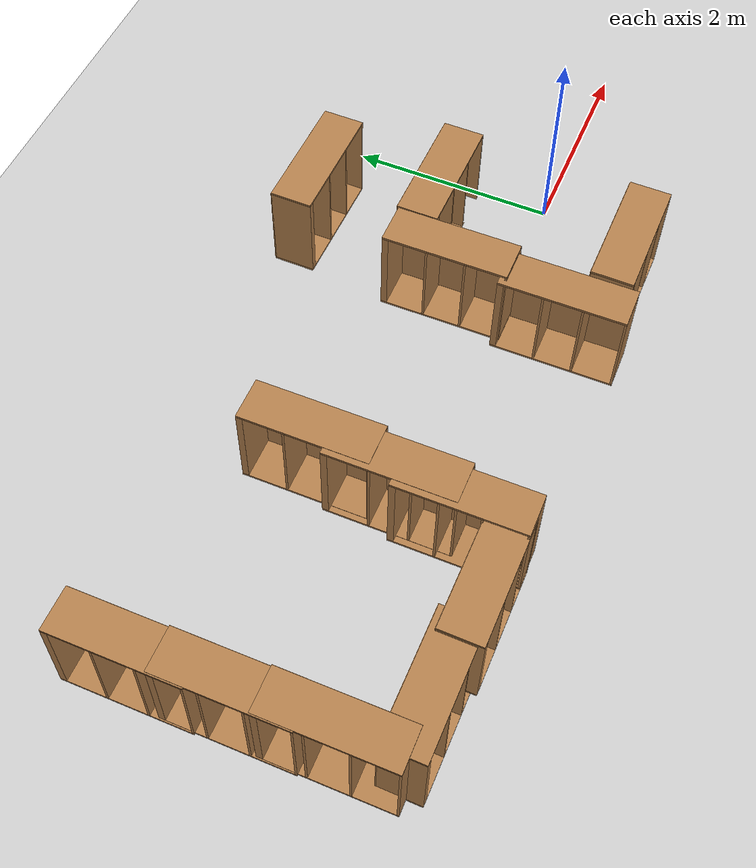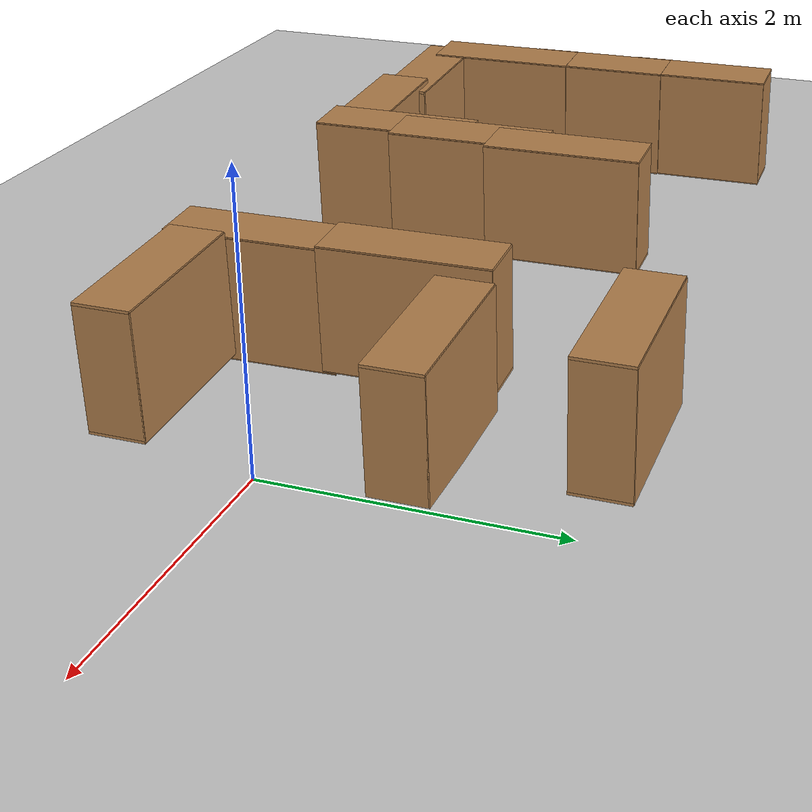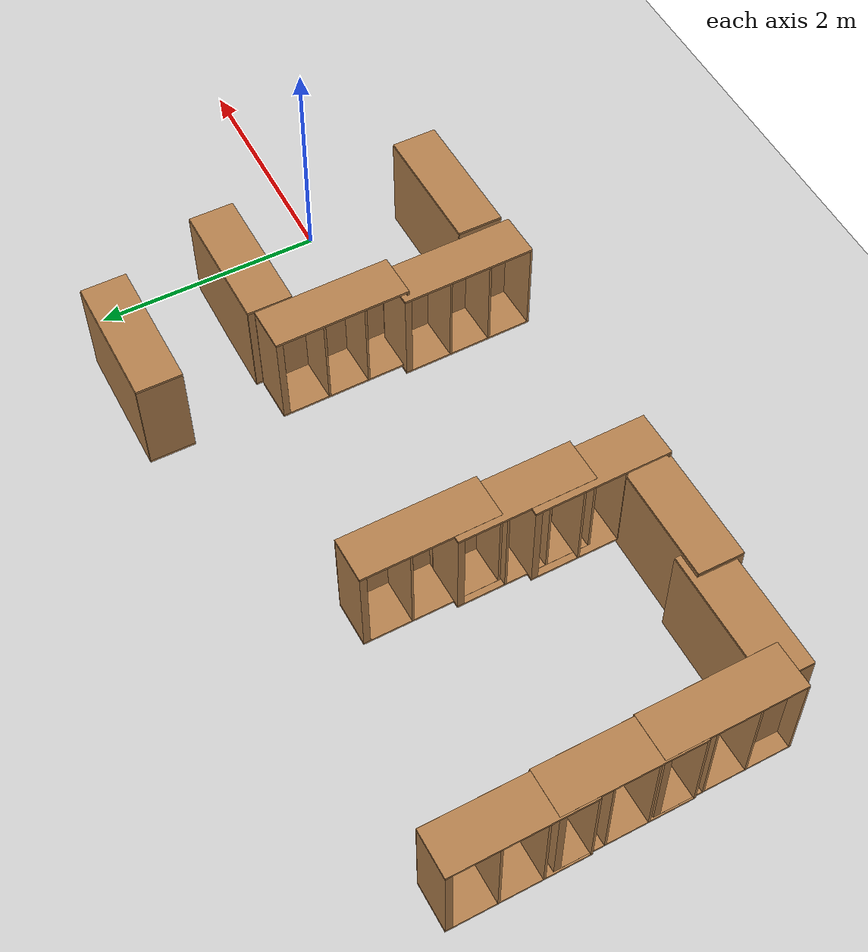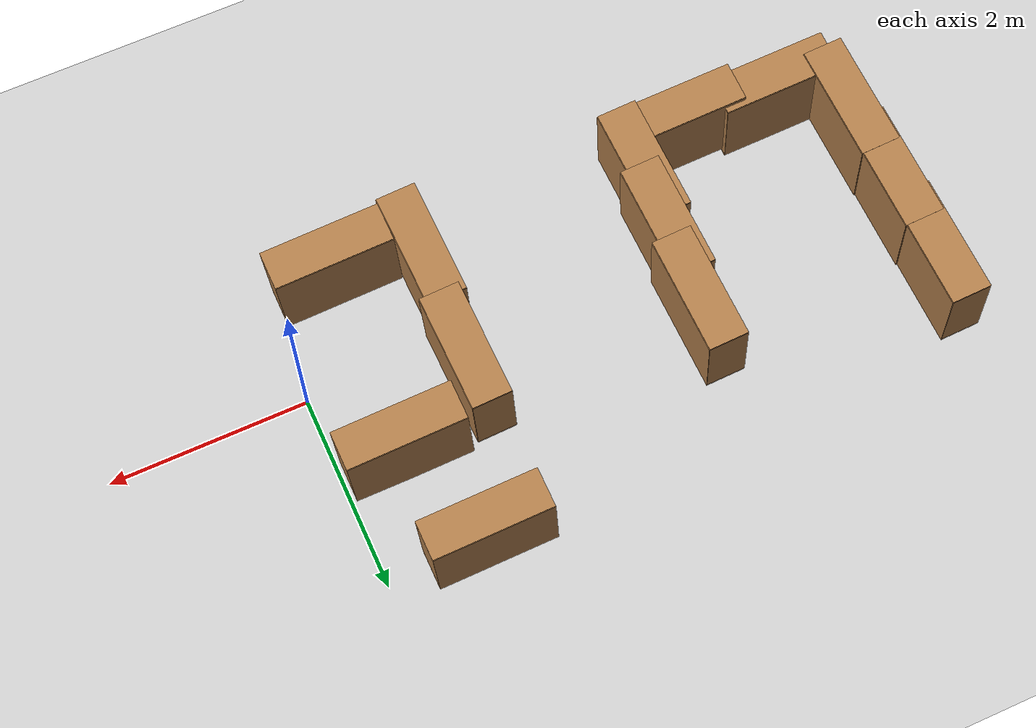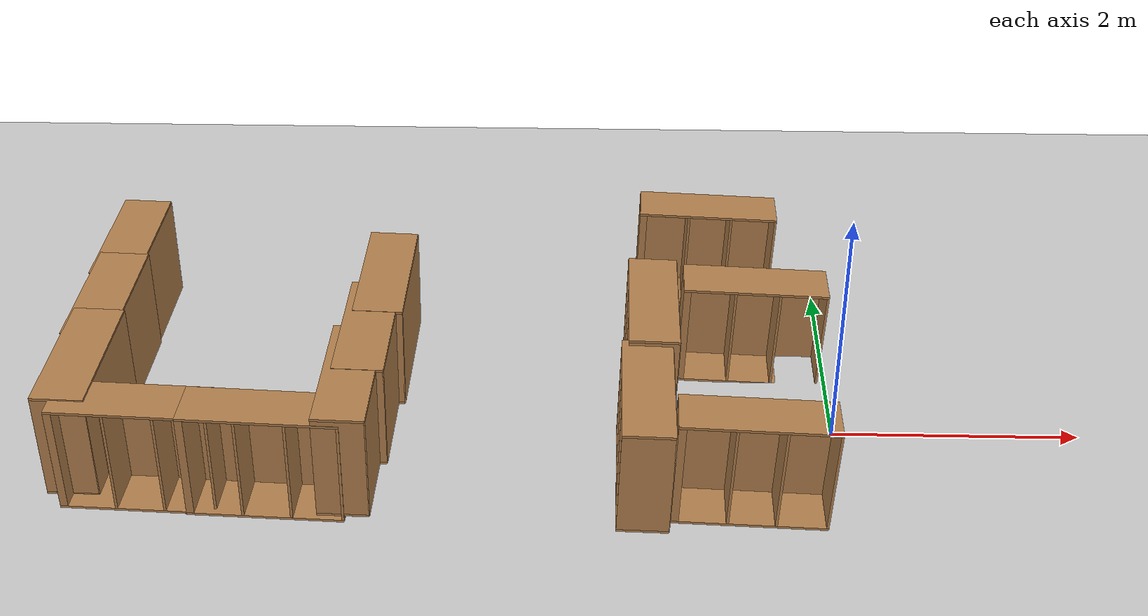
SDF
<sdf version="1.7">
 <world name="default">
  <model name="ground_plane">
   <static>1</static>
   <link name="link">
    <collision name="collision">
     <geometry><plane><normal>0 0 1</normal><size>100 100</size></plane></geometry>
     <surface>
      <contact><collide_bitmask>65535</collide_bitmask></contact>
      <friction><ode><mu>100</mu><mu2>50</mu2></ode></friction>
     </surface>
    </collision>
    <visual name="visual">
     <cast_shadows>0</cast_shadows>
     <geometry><plane><normal>0 0 1</normal><size>100 100</size></plane></geometry>
     <material>
      <script><uri>file://media/materials/scripts/gazebo.material</uri><name>Gazebo/Grey</name></script>
     </material>
    </visual>
   </link>
  </model>
  <model name="bookshelf_clone">
   <static>1</static>
   <link name="link">
    <inertial><mass>1</mass></inertial>
    <collision name="back">
     <pose>0 0.005 0.6 0 -0 0</pose>
     <geometry><box><size>0.9 0.01 1.2</size></box></geometry>
    </collision>
    <visual name="visual1">
     <pose>0 0.005 0.6 0 -0 0</pose>
     <geometry><box><size>0.9 0.01 1.2</size></box></geometry>
     <material>
      <script><uri>file://media/materials/scripts/gazebo.material</uri><name>Gazebo/Wood</name></script>
     </material>
    </visual>
    <collision name="left_side">
     <pose>0.45 -0.195 0.6 0 -0 0</pose>
     <geometry><box><size>0.02 0.4 1.2</size></box></geometry>
    </collision>
    <visual name="visual2">
     <pose>0.45 -0.195 0.6 0 -0 0</pose>
     <geometry><box><size>0.02 0.4 1.2</size></box></geometry>
     <material>
      <script><uri>file://media/materials/scripts/gazebo.material</uri><name>Gazebo/Wood</name></script>
     </material>
    </visual>
    <collision name="right_side">
     <pose>-0.45 -0.195 0.6 0 -0 0</pose>
     <geometry><box><size>0.02 0.4 1.2</size></box></geometry>
    </collision>
    <visual name="visual3">
     <pose>-0.45 -0.195 0.6 0 -0 0</pose>
     <geometry><box><size>0.02 0.4 1.2</size></box></geometry>
     <material>
      <script><uri>file://media/materials/scripts/gazebo.material</uri><name>Gazebo/Wood</name></script>
     </material>
    </visual>
    <collision name="bottom">
     <pose>0 -0.195 0.03 0 -0 0</pose>
     <geometry><box><size>0.88 0.4 0.06</size></box></geometry>
    </collision>
    <visual name="visual4">
     <pose>0 -0.195 0.03 0 -0 0</pose>
     <geometry><box><size>0.88 0.4 0.06</size></box></geometry>
     <material>
      <script><uri>file://media/materials/scripts/gazebo.material</uri><name>Gazebo/Wood</name></script>
     </material>
    </visual>
    <collision name="top">
     <pose>0 -0.195 1.19 0 -0 0</pose>
     <geometry><box><size>0.88 0.4 0.02</size></box></geometry>
    </collision>
    <visual name="visual5">
     <pose>0 -0.195 1.19 0 -0 0</pose>
     <geometry><box><size>0.88 0.4 0.02</size></box></geometry>
     <material>
      <script><uri>file://media/materials/scripts/gazebo.material</uri><name>Gazebo/Wood</name></script>
     </material>
    </visual>
    <collision name="low_shelf">
     <pose>0 -0.195 0.43 0 -0 0</pose>
     <geometry><box><size>0.88 0.4 0.02</size></box></geometry>
    </collision>
    <visual name="visual6">
     <pose>0 -0.195 0.43 0 -0 0</pose>
     <geometry><box><size>0.88 0.4 0.02</size></box></geometry>
     <material>
      <script><uri>file://media/materials/scripts/gazebo.material</uri><name>Gazebo/Wood</name></script>
     </material>
    </visual>
    <collision name="high_shelf">
     <pose>0 -0.195 0.8 0 -0 0</pose>
     <geometry><box><size>0.88 0.4 0.02</size></box></geometry>
    </collision>
    <visual name="visual7">
     <pose>0 -0.195 0.8 0 -0 0</pose>
     <geometry><box><size>0.88 0.4 0.02</size></box></geometry>
     <material>
      <script><uri>file://media/materials/scripts/gazebo.material</uri><name>Gazebo/Wood</name></script>
     </material>
    </visual>
   </link>
   <pose>-1.23623 1.09859 0.469198 3.1373 1.52729 3.13696</pose>
  </model>
  <model name="bookshelf_clone_clone">
   <static>1</static>
   <link name="link">
    <inertial><mass>1</mass></inertial>
    <collision name="back">
     <pose>0 0.005 0.6 0 -0 0</pose>
     <geometry><box><size>0.9 0.01 1.2</size></box></geometry>
    </collision>
    <visual name="visual1">
     <pose>0 0.005 0.6 0 -0 0</pose>
     <geometry><box><size>0.9 0.01 1.2</size></box></geometry>
     <material>
      <script><uri>file://media/materials/scripts/gazebo.material</uri><name>Gazebo/Wood</name></script>
     </material>
    </visual>
    <collision name="left_side">
     <pose>0.45 -0.195 0.6 0 -0 0</pose>
     <geometry><box><size>0.02 0.4 1.2</size></box></geometry>
    </collision>
    <visual name="visual2">
     <pose>0.45 -0.195 0.6 0 -0 0</pose>
     <geometry><box><size>0.02 0.4 1.2</size></box></geometry>
     <material>
      <script><uri>file://media/materials/scripts/gazebo.material</uri><name>Gazebo/Wood</name></script>
     </material>
    </visual>
    <collision name="right_side">
     <pose>-0.45 -0.195 0.6 0 -0 0</pose>
     <geometry><box><size>0.02 0.4 1.2</size></box></geometry>
    </collision>
    <visual name="visual3">
     <pose>-0.45 -0.195 0.6 0 -0 0</pose>
     <geometry><box><size>0.02 0.4 1.2</size></box></geometry>
     <material>
      <script><uri>file://media/materials/scripts/gazebo.material</uri><name>Gazebo/Wood</name></script>
     </material>
    </visual>
    <collision name="bottom">
     <pose>0 -0.195 0.03 0 -0 0</pose>
     <geometry><box><size>0.88 0.4 0.06</size></box></geometry>
    </collision>
    <visual name="visual4">
     <pose>0 -0.195 0.03 0 -0 0</pose>
     <geometry><box><size>0.88 0.4 0.06</size></box></geometry>
     <material>
      <script><uri>file://media/materials/scripts/gazebo.material</uri><name>Gazebo/Wood</name></script>
     </material>
    </visual>
    <collision name="top">
     <pose>0 -0.195 1.19 0 -0 0</pose>
     <geometry><box><size>0.88 0.4 0.02</size></box></geometry>
    </collision>
    <visual name="visual5">
     <pose>0 -0.195 1.19 0 -0 0</pose>
     <geometry><box><size>0.88 0.4 0.02</size></box></geometry>
     <material>
      <script><uri>file://media/materials/scripts/gazebo.material</uri><name>Gazebo/Wood</name></script>
     </material>
    </visual>
    <collision name="low_shelf">
     <pose>0 -0.195 0.43 0 -0 0</pose>
     <geometry><box><size>0.88 0.4 0.02</size></box></geometry>
    </collision>
    <visual name="visual6">
     <pose>0 -0.195 0.43 0 -0 0</pose>
     <geometry><box><size>0.88 0.4 0.02</size></box></geometry>
     <material>
      <script><uri>file://media/materials/scripts/gazebo.material</uri><name>Gazebo/Wood</name></script>
     </material>
    </visual>
    <collision name="high_shelf">
     <pose>0 -0.195 0.8 0 -0 0</pose>
     <geometry><box><size>0.88 0.4 0.02</size></box></geometry>
    </collision>
    <visual name="visual7">
     <pose>0 -0.195 0.8 0 -0 0</pose>
     <geometry><box><size>0.88 0.4 0.02</size></box></geometry>
     <material>
      <script><uri>file://media/materials/scripts/gazebo.material</uri><name>Gazebo/Wood</name></script>
     </material>
    </visual>
   </link>
   <pose>-1.31083 -0.80368 0.531222 3.1373 1.52729 3.13696</pose>
  </model>
  <model name="bookshelf_clone_clone_clone_5">
   <static>1</static>
   <link name="link">
    <inertial><mass>1</mass></inertial>
    <collision name="back">
     <pose>0 0.005 0.6 0 -0 0</pose>
     <geometry><box><size>0.9 0.01 1.2</size></box></geometry>
    </collision>
    <visual name="visual1">
     <pose>0 0.005 0.6 0 -0 0</pose>
     <geometry><box><size>0.9 0.01 1.2</size></box></geometry>
     <material>
      <script><uri>file://media/materials/scripts/gazebo.material</uri><name>Gazebo/Wood</name></script>
     </material>
    </visual>
    <collision name="left_side">
     <pose>0.45 -0.195 0.6 0 -0 0</pose>
     <geometry><box><size>0.02 0.4 1.2</size></box></geometry>
    </collision>
    <visual name="visual2">
     <pose>0.45 -0.195 0.6 0 -0 0</pose>
     <geometry><box><size>0.02 0.4 1.2</size></box></geometry>
     <material>
      <script><uri>file://media/materials/scripts/gazebo.material</uri><name>Gazebo/Wood</name></script>
     </material>
    </visual>
    <collision name="right_side">
     <pose>-0.45 -0.195 0.6 0 -0 0</pose>
     <geometry><box><size>0.02 0.4 1.2</size></box></geometry>
    </collision>
    <visual name="visual3">
     <pose>-0.45 -0.195 0.6 0 -0 0</pose>
     <geometry><box><size>0.02 0.4 1.2</size></box></geometry>
     <material>
      <script><uri>file://media/materials/scripts/gazebo.material</uri><name>Gazebo/Wood</name></script>
     </material>
    </visual>
    <collision name="bottom">
     <pose>0 -0.195 0.03 0 -0 0</pose>
     <geometry><box><size>0.88 0.4 0.06</size></box></geometry>
    </collision>
    <visual name="visual4">
     <pose>0 -0.195 0.03 0 -0 0</pose>
     <geometry><box><size>0.88 0.4 0.06</size></box></geometry>
     <material>
      <script><uri>file://media/materials/scripts/gazebo.material</uri><name>Gazebo/Wood</name></script>
     </material>
    </visual>
    <collision name="top">
     <pose>0 -0.195 1.19 0 -0 0</pose>
     <geometry><box><size>0.88 0.4 0.02</size></box></geometry>
    </collision>
    <visual name="visual5">
     <pose>0 -0.195 1.19 0 -0 0</pose>
     <geometry><box><size>0.88 0.4 0.02</size></box></geometry>
     <material>
      <script><uri>file://media/materials/scripts/gazebo.material</uri><name>Gazebo/Wood</name></script>
     </material>
    </visual>
    <collision name="low_shelf">
     <pose>0 -0.195 0.43 0 -0 0</pose>
     <geometry><box><size>0.88 0.4 0.02</size></box></geometry>
    </collision>
    <visual name="visual6">
     <pose>0 -0.195 0.43 0 -0 0</pose>
     <geometry><box><size>0.88 0.4 0.02</size></box></geometry>
     <material>
      <script><uri>file://media/materials/scripts/gazebo.material</uri><name>Gazebo/Wood</name></script>
     </material>
    </visual>
    <collision name="high_shelf">
     <pose>0 -0.195 0.8 0 -0 0</pose>
     <geometry><box><size>0.88 0.4 0.02</size></box></geometry>
    </collision>
    <visual name="visual7">
     <pose>0 -0.195 0.8 0 -0 0</pose>
     <geometry><box><size>0.88 0.4 0.02</size></box></geometry>
     <material>
      <script><uri>file://media/materials/scripts/gazebo.material</uri><name>Gazebo/Wood</name></script>
     </material>
    </visual>
   </link>
   <pose>-1.34326 -0.066098 0.486113 -1.58898 1.52729 3.13696</pose>
  </model>
  <model name="bookshelf_clone_clone_clone_5_clone">
   <static>1</static>
   <link name="link">
    <inertial><mass>1</mass></inertial>
    <collision name="back">
     <pose>0 0.005 0.6 0 -0 0</pose>
     <geometry><box><size>0.9 0.01 1.2</size></box></geometry>
    </collision>
    <visual name="visual1">
     <pose>0 0.005 0.6 0 -0 0</pose>
     <geometry><box><size>0.9 0.01 1.2</size></box></geometry>
     <material>
      <script><uri>file://media/materials/scripts/gazebo.material</uri><name>Gazebo/Wood</name></script>
     </material>
    </visual>
    <collision name="left_side">
     <pose>0.45 -0.195 0.6 0 -0 0</pose>
     <geometry><box><size>0.02 0.4 1.2</size></box></geometry>
    </collision>
    <visual name="visual2">
     <pose>0.45 -0.195 0.6 0 -0 0</pose>
     <geometry><box><size>0.02 0.4 1.2</size></box></geometry>
     <material>
      <script><uri>file://media/materials/scripts/gazebo.material</uri><name>Gazebo/Wood</name></script>
     </material>
    </visual>
    <collision name="right_side">
     <pose>-0.45 -0.195 0.6 0 -0 0</pose>
     <geometry><box><size>0.02 0.4 1.2</size></box></geometry>
    </collision>
    <visual name="visual3">
     <pose>-0.45 -0.195 0.6 0 -0 0</pose>
     <geometry><box><size>0.02 0.4 1.2</size></box></geometry>
     <material>
      <script><uri>file://media/materials/scripts/gazebo.material</uri><name>Gazebo/Wood</name></script>
     </material>
    </visual>
    <collision name="bottom">
     <pose>0 -0.195 0.03 0 -0 0</pose>
     <geometry><box><size>0.88 0.4 0.06</size></box></geometry>
    </collision>
    <visual name="visual4">
     <pose>0 -0.195 0.03 0 -0 0</pose>
     <geometry><box><size>0.88 0.4 0.06</size></box></geometry>
     <material>
      <script><uri>file://media/materials/scripts/gazebo.material</uri><name>Gazebo/Wood</name></script>
     </material>
    </visual>
    <collision name="top">
     <pose>0 -0.195 1.19 0 -0 0</pose>
     <geometry><box><size>0.88 0.4 0.02</size></box></geometry>
    </collision>
    <visual name="visual5">
     <pose>0 -0.195 1.19 0 -0 0</pose>
     <geometry><box><size>0.88 0.4 0.02</size></box></geometry>
     <material>
      <script><uri>file://media/materials/scripts/gazebo.material</uri><name>Gazebo/Wood</name></script>
     </material>
    </visual>
    <collision name="low_shelf">
     <pose>0 -0.195 0.43 0 -0 0</pose>
     <geometry><box><size>0.88 0.4 0.02</size></box></geometry>
    </collision>
    <visual name="visual6">
     <pose>0 -0.195 0.43 0 -0 0</pose>
     <geometry><box><size>0.88 0.4 0.02</size></box></geometry>
     <material>
      <script><uri>file://media/materials/scripts/gazebo.material</uri><name>Gazebo/Wood</name></script>
     </material>
    </visual>
    <collision name="high_shelf">
     <pose>0 -0.195 0.8 0 -0 0</pose>
     <geometry><box><size>0.88 0.4 0.02</size></box></geometry>
    </collision>
    <visual name="visual7">
     <pose>0 -0.195 0.8 0 -0 0</pose>
     <geometry><box><size>0.88 0.4 0.02</size></box></geometry>
     <material>
      <script><uri>file://media/materials/scripts/gazebo.material</uri><name>Gazebo/Wood</name></script>
     </material>
    </visual>
   </link>
   <pose>-1.30319 1.06466 0.531222 -1.58898 1.52729 3.13696</pose>
  </model>
  <model name="bookshelf_clone_clone_clone_4_clone_5_clone_13">
   <static>1</static>
   <link name="link">
    <inertial><mass>1</mass></inertial>
    <collision name="back">
     <pose>0 0.005 0.6 0 -0 0</pose>
     <geometry><box><size>0.9 0.01 1.2</size></box></geometry>
    </collision>
    <visual name="visual1">
     <pose>0 0.005 0.6 0 -0 0</pose>
     <geometry><box><size>0.9 0.01 1.2</size></box></geometry>
     <material>
      <script><uri>file://media/materials/scripts/gazebo.material</uri><name>Gazebo/Wood</name></script>
     </material>
    </visual>
    <collision name="left_side">
     <pose>0.45 -0.195 0.6 0 -0 0</pose>
     <geometry><box><size>0.02 0.4 1.2</size></box></geometry>
    </collision>
    <visual name="visual2">
     <pose>0.45 -0.195 0.6 0 -0 0</pose>
     <geometry><box><size>0.02 0.4 1.2</size></box></geometry>
     <material>
      <script><uri>file://media/materials/scripts/gazebo.material</uri><name>Gazebo/Wood</name></script>
     </material>
    </visual>
    <collision name="right_side">
     <pose>-0.45 -0.195 0.6 0 -0 0</pose>
     <geometry><box><size>0.02 0.4 1.2</size></box></geometry>
    </collision>
    <visual name="visual3">
     <pose>-0.45 -0.195 0.6 0 -0 0</pose>
     <geometry><box><size>0.02 0.4 1.2</size></box></geometry>
     <material>
      <script><uri>file://media/materials/scripts/gazebo.material</uri><name>Gazebo/Wood</name></script>
     </material>
    </visual>
    <collision name="bottom">
     <pose>0 -0.195 0.03 0 -0 0</pose>
     <geometry><box><size>0.88 0.4 0.06</size></box></geometry>
    </collision>
    <visual name="visual4">
     <pose>0 -0.195 0.03 0 -0 0</pose>
     <geometry><box><size>0.88 0.4 0.06</size></box></geometry>
     <material>
      <script><uri>file://media/materials/scripts/gazebo.material</uri><name>Gazebo/Wood</name></script>
     </material>
    </visual>
    <collision name="top">
     <pose>0 -0.195 1.19 0 -0 0</pose>
     <geometry><box><size>0.88 0.4 0.02</size></box></geometry>
    </collision>
    <visual name="visual5">
     <pose>0 -0.195 1.19 0 -0 0</pose>
     <geometry><box><size>0.88 0.4 0.02</size></box></geometry>
     <material>
      <script><uri>file://media/materials/scripts/gazebo.material</uri><name>Gazebo/Wood</name></script>
     </material>
    </visual>
    <collision name="low_shelf">
     <pose>0 -0.195 0.43 0 -0 0</pose>
     <geometry><box><size>0.88 0.4 0.02</size></box></geometry>
    </collision>
    <visual name="visual6">
     <pose>0 -0.195 0.43 0 -0 0</pose>
     <geometry><box><size>0.88 0.4 0.02</size></box></geometry>
     <material>
      <script><uri>file://media/materials/scripts/gazebo.material</uri><name>Gazebo/Wood</name></script>
     </material>
    </visual>
    <collision name="high_shelf">
     <pose>0 -0.195 0.8 0 -0 0</pose>
     <geometry><box><size>0.88 0.4 0.02</size></box></geometry>
    </collision>
    <visual name="visual7">
     <pose>0 -0.195 0.8 0 -0 0</pose>
     <geometry><box><size>0.88 0.4 0.02</size></box></geometry>
     <material>
      <script><uri>file://media/materials/scripts/gazebo.material</uri><name>Gazebo/Wood</name></script>
     </material>
    </visual>
   </link>
   <pose>-1.60174 2.21571 0.531222 3.1373 1.52729 3.13696</pose>
  </model>
  <model name="bookshelf_clone_clone_clone_5_clone_clone_0">
   <static>1</static>
   <link name="link">
    <inertial><mass>1</mass></inertial>
    <collision name="back">
     <pose>0 0.005 0.6 0 -0 0</pose>
     <geometry><box><size>0.9 0.01 1.2</size></box></geometry>
    </collision>
    <visual name="visual1">
     <pose>0 0.005 0.6 0 -0 0</pose>
     <geometry><box><size>0.9 0.01 1.2</size></box></geometry>
     <material>
      <script><uri>file://media/materials/scripts/gazebo.material</uri><name>Gazebo/Wood</name></script>
     </material>
    </visual>
    <collision name="left_side">
     <pose>0.45 -0.195 0.6 0 -0 0</pose>
     <geometry><box><size>0.02 0.4 1.2</size></box></geometry>
    </collision>
    <visual name="visual2">
     <pose>0.45 -0.195 0.6 0 -0 0</pose>
     <geometry><box><size>0.02 0.4 1.2</size></box></geometry>
     <material>
      <script><uri>file://media/materials/scripts/gazebo.material</uri><name>Gazebo/Wood</name></script>
     </material>
    </visual>
    <collision name="right_side">
     <pose>-0.45 -0.195 0.6 0 -0 0</pose>
     <geometry><box><size>0.02 0.4 1.2</size></box></geometry>
    </collision>
    <visual name="visual3">
     <pose>-0.45 -0.195 0.6 0 -0 0</pose>
     <geometry><box><size>0.02 0.4 1.2</size></box></geometry>
     <material>
      <script><uri>file://media/materials/scripts/gazebo.material</uri><name>Gazebo/Wood</name></script>
     </material>
    </visual>
    <collision name="bottom">
     <pose>0 -0.195 0.03 0 -0 0</pose>
     <geometry><box><size>0.88 0.4 0.06</size></box></geometry>
    </collision>
    <visual name="visual4">
     <pose>0 -0.195 0.03 0 -0 0</pose>
     <geometry><box><size>0.88 0.4 0.06</size></box></geometry>
     <material>
      <script><uri>file://media/materials/scripts/gazebo.material</uri><name>Gazebo/Wood</name></script>
     </material>
    </visual>
    <collision name="top">
     <pose>0 -0.195 1.19 0 -0 0</pose>
     <geometry><box><size>0.88 0.4 0.02</size></box></geometry>
    </collision>
    <visual name="visual5">
     <pose>0 -0.195 1.19 0 -0 0</pose>
     <geometry><box><size>0.88 0.4 0.02</size></box></geometry>
     <material>
      <script><uri>file://media/materials/scripts/gazebo.material</uri><name>Gazebo/Wood</name></script>
     </material>
    </visual>
    <collision name="low_shelf">
     <pose>0 -0.195 0.43 0 -0 0</pose>
     <geometry><box><size>0.88 0.4 0.02</size></box></geometry>
    </collision>
    <visual name="visual6">
     <pose>0 -0.195 0.43 0 -0 0</pose>
     <geometry><box><size>0.88 0.4 0.02</size></box></geometry>
     <material>
      <script><uri>file://media/materials/scripts/gazebo.material</uri><name>Gazebo/Wood</name></script>
     </material>
    </visual>
    <collision name="high_shelf">
     <pose>0 -0.195 0.8 0 -0 0</pose>
     <geometry><box><size>0.88 0.4 0.02</size></box></geometry>
    </collision>
    <visual name="visual7">
     <pose>0 -0.195 0.8 0 -0 0</pose>
     <geometry><box><size>0.88 0.4 0.02</size></box></geometry>
     <material>
      <script><uri>file://media/materials/scripts/gazebo.material</uri><name>Gazebo/Wood</name></script>
     </material>
    </visual>
   </link>
   <pose>-3.51838 1.43037 0.531222 -1.58898 1.52729 3.13696</pose>
  </model>
  <model name="bookshelf_clone_clone_clone_5_clone_clone_1">
   <static>1</static>
   <link name="link">
    <inertial><mass>1</mass></inertial>
    <collision name="back">
     <pose>0 0.005 0.6 0 -0 0</pose>
     <geometry><box><size>0.9 0.01 1.2</size></box></geometry>
    </collision>
    <visual name="visual1">
     <pose>0 0.005 0.6 0 -0 0</pose>
     <geometry><box><size>0.9 0.01 1.2</size></box></geometry>
     <material>
      <script><uri>file://media/materials/scripts/gazebo.material</uri><name>Gazebo/Wood</name></script>
     </material>
    </visual>
    <collision name="left_side">
     <pose>0.45 -0.195 0.6 0 -0 0</pose>
     <geometry><box><size>0.02 0.4 1.2</size></box></geometry>
    </collision>
    <visual name="visual2">
     <pose>0.45 -0.195 0.6 0 -0 0</pose>
     <geometry><box><size>0.02 0.4 1.2</size></box></geometry>
     <material>
      <script><uri>file://media/materials/scripts/gazebo.material</uri><name>Gazebo/Wood</name></script>
     </material>
    </visual>
    <collision name="right_side">
     <pose>-0.45 -0.195 0.6 0 -0 0</pose>
     <geometry><box><size>0.02 0.4 1.2</size></box></geometry>
    </collision>
    <visual name="visual3">
     <pose>-0.45 -0.195 0.6 0 -0 0</pose>
     <geometry><box><size>0.02 0.4 1.2</size></box></geometry>
     <material>
      <script><uri>file://media/materials/scripts/gazebo.material</uri><name>Gazebo/Wood</name></script>
     </material>
    </visual>
    <collision name="bottom">
     <pose>0 -0.195 0.03 0 -0 0</pose>
     <geometry><box><size>0.88 0.4 0.06</size></box></geometry>
    </collision>
    <visual name="visual4">
     <pose>0 -0.195 0.03 0 -0 0</pose>
     <geometry><box><size>0.88 0.4 0.06</size></box></geometry>
     <material>
      <script><uri>file://media/materials/scripts/gazebo.material</uri><name>Gazebo/Wood</name></script>
     </material>
    </visual>
    <collision name="top">
     <pose>0 -0.195 1.19 0 -0 0</pose>
     <geometry><box><size>0.88 0.4 0.02</size></box></geometry>
    </collision>
    <visual name="visual5">
     <pose>0 -0.195 1.19 0 -0 0</pose>
     <geometry><box><size>0.88 0.4 0.02</size></box></geometry>
     <material>
      <script><uri>file://media/materials/scripts/gazebo.material</uri><name>Gazebo/Wood</name></script>
     </material>
    </visual>
    <collision name="low_shelf">
     <pose>0 -0.195 0.43 0 -0 0</pose>
     <geometry><box><size>0.88 0.4 0.02</size></box></geometry>
    </collision>
    <visual name="visual6">
     <pose>0 -0.195 0.43 0 -0 0</pose>
     <geometry><box><size>0.88 0.4 0.02</size></box></geometry>
     <material>
      <script><uri>file://media/materials/scripts/gazebo.material</uri><name>Gazebo/Wood</name></script>
     </material>
    </visual>
    <collision name="high_shelf">
     <pose>0 -0.195 0.8 0 -0 0</pose>
     <geometry><box><size>0.88 0.4 0.02</size></box></geometry>
    </collision>
    <visual name="visual7">
     <pose>0 -0.195 0.8 0 -0 0</pose>
     <geometry><box><size>0.88 0.4 0.02</size></box></geometry>
     <material>
      <script><uri>file://media/materials/scripts/gazebo.material</uri><name>Gazebo/Wood</name></script>
     </material>
    </visual>
   </link>
   <pose>-3.56279 0.641442 0.531222 -1.58898 1.52729 3.13696</pose>
  </model>
  <model name="bookshelf_clone_clone_clone_5_clone_clone_2">
   <static>1</static>
   <link name="link">
    <inertial><mass>1</mass></inertial>
    <collision name="back">
     <pose>0 0.005 0.6 0 -0 0</pose>
     <geometry><box><size>0.9 0.01 1.2</size></box></geometry>
    </collision>
    <visual name="visual1">
     <pose>0 0.005 0.6 0 -0 0</pose>
     <geometry><box><size>0.9 0.01 1.2</size></box></geometry>
     <material>
      <script><uri>file://media/materials/scripts/gazebo.material</uri><name>Gazebo/Wood</name></script>
     </material>
    </visual>
    <collision name="left_side">
     <pose>0.45 -0.195 0.6 0 -0 0</pose>
     <geometry><box><size>0.02 0.4 1.2</size></box></geometry>
    </collision>
    <visual name="visual2">
     <pose>0.45 -0.195 0.6 0 -0 0</pose>
     <geometry><box><size>0.02 0.4 1.2</size></box></geometry>
     <material>
      <script><uri>file://media/materials/scripts/gazebo.material</uri><name>Gazebo/Wood</name></script>
     </material>
    </visual>
    <collision name="right_side">
     <pose>-0.45 -0.195 0.6 0 -0 0</pose>
     <geometry><box><size>0.02 0.4 1.2</size></box></geometry>
    </collision>
    <visual name="visual3">
     <pose>-0.45 -0.195 0.6 0 -0 0</pose>
     <geometry><box><size>0.02 0.4 1.2</size></box></geometry>
     <material>
      <script><uri>file://media/materials/scripts/gazebo.material</uri><name>Gazebo/Wood</name></script>
     </material>
    </visual>
    <collision name="bottom">
     <pose>0 -0.195 0.03 0 -0 0</pose>
     <geometry><box><size>0.88 0.4 0.06</size></box></geometry>
    </collision>
    <visual name="visual4">
     <pose>0 -0.195 0.03 0 -0 0</pose>
     <geometry><box><size>0.88 0.4 0.06</size></box></geometry>
     <material>
      <script><uri>file://media/materials/scripts/gazebo.material</uri><name>Gazebo/Wood</name></script>
     </material>
    </visual>
    <collision name="top">
     <pose>0 -0.195 1.19 0 -0 0</pose>
     <geometry><box><size>0.88 0.4 0.02</size></box></geometry>
    </collision>
    <visual name="visual5">
     <pose>0 -0.195 1.19 0 -0 0</pose>
     <geometry><box><size>0.88 0.4 0.02</size></box></geometry>
     <material>
      <script><uri>file://media/materials/scripts/gazebo.material</uri><name>Gazebo/Wood</name></script>
     </material>
    </visual>
    <collision name="low_shelf">
     <pose>0 -0.195 0.43 0 -0 0</pose>
     <geometry><box><size>0.88 0.4 0.02</size></box></geometry>
    </collision>
    <visual name="visual6">
     <pose>0 -0.195 0.43 0 -0 0</pose>
     <geometry><box><size>0.88 0.4 0.02</size></box></geometry>
     <material>
      <script><uri>file://media/materials/scripts/gazebo.material</uri><name>Gazebo/Wood</name></script>
     </material>
    </visual>
    <collision name="high_shelf">
     <pose>0 -0.195 0.8 0 -0 0</pose>
     <geometry><box><size>0.88 0.4 0.02</size></box></geometry>
    </collision>
    <visual name="visual7">
     <pose>0 -0.195 0.8 0 -0 0</pose>
     <geometry><box><size>0.88 0.4 0.02</size></box></geometry>
     <material>
      <script><uri>file://media/materials/scripts/gazebo.material</uri><name>Gazebo/Wood</name></script>
     </material>
    </visual>
   </link>
   <pose>-3.61341 0.012961 0.531222 -1.58898 1.52729 3.13696</pose>
  </model>
  <model name="bookshelf_clone_clone_clone_5_clone_clone_6">
   <static>1</static>
   <link name="link">
    <inertial><mass>1</mass></inertial>
    <collision name="back">
     <pose>0 0.005 0.6 0 -0 0</pose>
     <geometry><box><size>0.9 0.01 1.2</size></box></geometry>
    </collision>
    <visual name="visual1">
     <pose>0 0.005 0.6 0 -0 0</pose>
     <geometry><box><size>0.9 0.01 1.2</size></box></geometry>
     <material>
      <script><uri>file://media/materials/scripts/gazebo.material</uri><name>Gazebo/Wood</name></script>
     </material>
    </visual>
    <collision name="left_side">
     <pose>0.45 -0.195 0.6 0 -0 0</pose>
     <geometry><box><size>0.02 0.4 1.2</size></box></geometry>
    </collision>
    <visual name="visual2">
     <pose>0.45 -0.195 0.6 0 -0 0</pose>
     <geometry><box><size>0.02 0.4 1.2</size></box></geometry>
     <material>
      <script><uri>file://media/materials/scripts/gazebo.material</uri><name>Gazebo/Wood</name></script>
     </material>
    </visual>
    <collision name="right_side">
     <pose>-0.45 -0.195 0.6 0 -0 0</pose>
     <geometry><box><size>0.02 0.4 1.2</size></box></geometry>
    </collision>
    <visual name="visual3">
     <pose>-0.45 -0.195 0.6 0 -0 0</pose>
     <geometry><box><size>0.02 0.4 1.2</size></box></geometry>
     <material>
      <script><uri>file://media/materials/scripts/gazebo.material</uri><name>Gazebo/Wood</name></script>
     </material>
    </visual>
    <collision name="bottom">
     <pose>0 -0.195 0.03 0 -0 0</pose>
     <geometry><box><size>0.88 0.4 0.06</size></box></geometry>
    </collision>
    <visual name="visual4">
     <pose>0 -0.195 0.03 0 -0 0</pose>
     <geometry><box><size>0.88 0.4 0.06</size></box></geometry>
     <material>
      <script><uri>file://media/materials/scripts/gazebo.material</uri><name>Gazebo/Wood</name></script>
     </material>
    </visual>
    <collision name="top">
     <pose>0 -0.195 1.19 0 -0 0</pose>
     <geometry><box><size>0.88 0.4 0.02</size></box></geometry>
    </collision>
    <visual name="visual5">
     <pose>0 -0.195 1.19 0 -0 0</pose>
     <geometry><box><size>0.88 0.4 0.02</size></box></geometry>
     <material>
      <script><uri>file://media/materials/scripts/gazebo.material</uri><name>Gazebo/Wood</name></script>
     </material>
    </visual>
    <collision name="low_shelf">
     <pose>0 -0.195 0.43 0 -0 0</pose>
     <geometry><box><size>0.88 0.4 0.02</size></box></geometry>
    </collision>
    <visual name="visual6">
     <pose>0 -0.195 0.43 0 -0 0</pose>
     <geometry><box><size>0.88 0.4 0.02</size></box></geometry>
     <material>
      <script><uri>file://media/materials/scripts/gazebo.material</uri><name>Gazebo/Wood</name></script>
     </material>
    </visual>
    <collision name="high_shelf">
     <pose>0 -0.195 0.8 0 -0 0</pose>
     <geometry><box><size>0.88 0.4 0.02</size></box></geometry>
    </collision>
    <visual name="visual7">
     <pose>0 -0.195 0.8 0 -0 0</pose>
     <geometry><box><size>0.88 0.4 0.02</size></box></geometry>
     <material>
      <script><uri>file://media/materials/scripts/gazebo.material</uri><name>Gazebo/Wood</name></script>
     </material>
    </visual>
   </link>
   <pose>-5.77744 1.93158 0.531222 -1.58898 1.52729 3.13696</pose>
  </model>
  <model name="bookshelf_clone_clone_clone_5_clone_clone_7">
   <static>1</static>
   <link name="link">
    <inertial><mass>1</mass></inertial>
    <collision name="back">
     <pose>0 0.005 0.6 0 -0 0</pose>
     <geometry><box><size>0.9 0.01 1.2</size></box></geometry>
    </collision>
    <visual name="visual1">
     <pose>0 0.005 0.6 0 -0 0</pose>
     <geometry><box><size>0.9 0.01 1.2</size></box></geometry>
     <material>
      <script><uri>file://media/materials/scripts/gazebo.material</uri><name>Gazebo/Wood</name></script>
     </material>
    </visual>
    <collision name="left_side">
     <pose>0.45 -0.195 0.6 0 -0 0</pose>
     <geometry><box><size>0.02 0.4 1.2</size></box></geometry>
    </collision>
    <visual name="visual2">
     <pose>0.45 -0.195 0.6 0 -0 0</pose>
     <geometry><box><size>0.02 0.4 1.2</size></box></geometry>
     <material>
      <script><uri>file://media/materials/scripts/gazebo.material</uri><name>Gazebo/Wood</name></script>
     </material>
    </visual>
    <collision name="right_side">
     <pose>-0.45 -0.195 0.6 0 -0 0</pose>
     <geometry><box><size>0.02 0.4 1.2</size></box></geometry>
    </collision>
    <visual name="visual3">
     <pose>-0.45 -0.195 0.6 0 -0 0</pose>
     <geometry><box><size>0.02 0.4 1.2</size></box></geometry>
     <material>
      <script><uri>file://media/materials/scripts/gazebo.material</uri><name>Gazebo/Wood</name></script>
     </material>
    </visual>
    <collision name="bottom">
     <pose>0 -0.195 0.03 0 -0 0</pose>
     <geometry><box><size>0.88 0.4 0.06</size></box></geometry>
    </collision>
    <visual name="visual4">
     <pose>0 -0.195 0.03 0 -0 0</pose>
     <geometry><box><size>0.88 0.4 0.06</size></box></geometry>
     <material>
      <script><uri>file://media/materials/scripts/gazebo.material</uri><name>Gazebo/Wood</name></script>
     </material>
    </visual>
    <collision name="top">
     <pose>0 -0.195 1.19 0 -0 0</pose>
     <geometry><box><size>0.88 0.4 0.02</size></box></geometry>
    </collision>
    <visual name="visual5">
     <pose>0 -0.195 1.19 0 -0 0</pose>
     <geometry><box><size>0.88 0.4 0.02</size></box></geometry>
     <material>
      <script><uri>file://media/materials/scripts/gazebo.material</uri><name>Gazebo/Wood</name></script>
     </material>
    </visual>
    <collision name="low_shelf">
     <pose>0 -0.195 0.43 0 -0 0</pose>
     <geometry><box><size>0.88 0.4 0.02</size></box></geometry>
    </collision>
    <visual name="visual6">
     <pose>0 -0.195 0.43 0 -0 0</pose>
     <geometry><box><size>0.88 0.4 0.02</size></box></geometry>
     <material>
      <script><uri>file://media/materials/scripts/gazebo.material</uri><name>Gazebo/Wood</name></script>
     </material>
    </visual>
    <collision name="high_shelf">
     <pose>0 -0.195 0.8 0 -0 0</pose>
     <geometry><box><size>0.88 0.4 0.02</size></box></geometry>
    </collision>
    <visual name="visual7">
     <pose>0 -0.195 0.8 0 -0 0</pose>
     <geometry><box><size>0.88 0.4 0.02</size></box></geometry>
     <material>
      <script><uri>file://media/materials/scripts/gazebo.material</uri><name>Gazebo/Wood</name></script>
     </material>
    </visual>
   </link>
   <pose>-5.75207 1.05121 0.531222 -1.58898 1.52729 3.13696</pose>
  </model>
  <model name="bookshelf_clone_clone_clone_5_clone_clone_8">
   <static>1</static>
   <link name="link">
    <inertial><mass>1</mass></inertial>
    <collision name="back">
     <pose>0 0.005 0.6 0 -0 0</pose>
     <geometry><box><size>0.9 0.01 1.2</size></box></geometry>
    </collision>
    <visual name="visual1">
     <pose>0 0.005 0.6 0 -0 0</pose>
     <geometry><box><size>0.9 0.01 1.2</size></box></geometry>
     <material>
      <script><uri>file://media/materials/scripts/gazebo.material</uri><name>Gazebo/Wood</name></script>
     </material>
    </visual>
    <collision name="left_side">
     <pose>0.45 -0.195 0.6 0 -0 0</pose>
     <geometry><box><size>0.02 0.4 1.2</size></box></geometry>
    </collision>
    <visual name="visual2">
     <pose>0.45 -0.195 0.6 0 -0 0</pose>
     <geometry><box><size>0.02 0.4 1.2</size></box></geometry>
     <material>
      <script><uri>file://media/materials/scripts/gazebo.material</uri><name>Gazebo/Wood</name></script>
     </material>
    </visual>
    <collision name="right_side">
     <pose>-0.45 -0.195 0.6 0 -0 0</pose>
     <geometry><box><size>0.02 0.4 1.2</size></box></geometry>
    </collision>
    <visual name="visual3">
     <pose>-0.45 -0.195 0.6 0 -0 0</pose>
     <geometry><box><size>0.02 0.4 1.2</size></box></geometry>
     <material>
      <script><uri>file://media/materials/scripts/gazebo.material</uri><name>Gazebo/Wood</name></script>
     </material>
    </visual>
    <collision name="bottom">
     <pose>0 -0.195 0.03 0 -0 0</pose>
     <geometry><box><size>0.88 0.4 0.06</size></box></geometry>
    </collision>
    <visual name="visual4">
     <pose>0 -0.195 0.03 0 -0 0</pose>
     <geometry><box><size>0.88 0.4 0.06</size></box></geometry>
     <material>
      <script><uri>file://media/materials/scripts/gazebo.material</uri><name>Gazebo/Wood</name></script>
     </material>
    </visual>
    <collision name="top">
     <pose>0 -0.195 1.19 0 -0 0</pose>
     <geometry><box><size>0.88 0.4 0.02</size></box></geometry>
    </collision>
    <visual name="visual5">
     <pose>0 -0.195 1.19 0 -0 0</pose>
     <geometry><box><size>0.88 0.4 0.02</size></box></geometry>
     <material>
      <script><uri>file://media/materials/scripts/gazebo.material</uri><name>Gazebo/Wood</name></script>
     </material>
    </visual>
    <collision name="low_shelf">
     <pose>0 -0.195 0.43 0 -0 0</pose>
     <geometry><box><size>0.88 0.4 0.02</size></box></geometry>
    </collision>
    <visual name="visual6">
     <pose>0 -0.195 0.43 0 -0 0</pose>
     <geometry><box><size>0.88 0.4 0.02</size></box></geometry>
     <material>
      <script><uri>file://media/materials/scripts/gazebo.material</uri><name>Gazebo/Wood</name></script>
     </material>
    </visual>
    <collision name="high_shelf">
     <pose>0 -0.195 0.8 0 -0 0</pose>
     <geometry><box><size>0.88 0.4 0.02</size></box></geometry>
    </collision>
    <visual name="visual7">
     <pose>0 -0.195 0.8 0 -0 0</pose>
     <geometry><box><size>0.88 0.4 0.02</size></box></geometry>
     <material>
      <script><uri>file://media/materials/scripts/gazebo.material</uri><name>Gazebo/Wood</name></script>
     </material>
    </visual>
   </link>
   <pose>-5.72847 0.21027 0.531222 -1.58898 1.52729 3.13696</pose>
  </model>
  <model name="bookshelf_clone_clone_clone_4_clone_5_clone_17_clone_0">
   <static>1</static>
   <link name="link">
    <inertial><mass>1</mass></inertial>
    <collision name="back">
     <pose>0 0.005 0.6 0 -0 0</pose>
     <geometry><box><size>0.9 0.01 1.2</size></box></geometry>
    </collision>
    <visual name="visual1">
     <pose>0 0.005 0.6 0 -0 0</pose>
     <geometry><box><size>0.9 0.01 1.2</size></box></geometry>
     <material>
      <script><uri>file://media/materials/scripts/gazebo.material</uri><name>Gazebo/Wood</name></script>
     </material>
    </visual>
    <collision name="left_side">
     <pose>0.45 -0.195 0.6 0 -0 0</pose>
     <geometry><box><size>0.02 0.4 1.2</size></box></geometry>
    </collision>
    <visual name="visual2">
     <pose>0.45 -0.195 0.6 0 -0 0</pose>
     <geometry><box><size>0.02 0.4 1.2</size></box></geometry>
     <material>
      <script><uri>file://media/materials/scripts/gazebo.material</uri><name>Gazebo/Wood</name></script>
     </material>
    </visual>
    <collision name="right_side">
     <pose>-0.45 -0.195 0.6 0 -0 0</pose>
     <geometry><box><size>0.02 0.4 1.2</size></box></geometry>
    </collision>
    <visual name="visual3">
     <pose>-0.45 -0.195 0.6 0 -0 0</pose>
     <geometry><box><size>0.02 0.4 1.2</size></box></geometry>
     <material>
      <script><uri>file://media/materials/scripts/gazebo.material</uri><name>Gazebo/Wood</name></script>
     </material>
    </visual>
    <collision name="bottom">
     <pose>0 -0.195 0.03 0 -0 0</pose>
     <geometry><box><size>0.88 0.4 0.06</size></box></geometry>
    </collision>
    <visual name="visual4">
     <pose>0 -0.195 0.03 0 -0 0</pose>
     <geometry><box><size>0.88 0.4 0.06</size></box></geometry>
     <material>
      <script><uri>file://media/materials/scripts/gazebo.material</uri><name>Gazebo/Wood</name></script>
     </material>
    </visual>
    <collision name="top">
     <pose>0 -0.195 1.19 0 -0 0</pose>
     <geometry><box><size>0.88 0.4 0.02</size></box></geometry>
    </collision>
    <visual name="visual5">
     <pose>0 -0.195 1.19 0 -0 0</pose>
     <geometry><box><size>0.88 0.4 0.02</size></box></geometry>
     <material>
      <script><uri>file://media/materials/scripts/gazebo.material</uri><name>Gazebo/Wood</name></script>
     </material>
    </visual>
    <collision name="low_shelf">
     <pose>0 -0.195 0.43 0 -0 0</pose>
     <geometry><box><size>0.88 0.4 0.02</size></box></geometry>
    </collision>
    <visual name="visual6">
     <pose>0 -0.195 0.43 0 -0 0</pose>
     <geometry><box><size>0.88 0.4 0.02</size></box></geometry>
     <material>
      <script><uri>file://media/materials/scripts/gazebo.material</uri><name>Gazebo/Wood</name></script>
     </material>
    </visual>
    <collision name="high_shelf">
     <pose>0 -0.195 0.8 0 -0 0</pose>
     <geometry><box><size>0.88 0.4 0.02</size></box></geometry>
    </collision>
    <visual name="visual7">
     <pose>0 -0.195 0.8 0 -0 0</pose>
     <geometry><box><size>0.88 0.4 0.02</size></box></geometry>
     <material>
      <script><uri>file://media/materials/scripts/gazebo.material</uri><name>Gazebo/Wood</name></script>
     </material>
    </visual>
   </link>
   <pose>-4.98477 -0.798723 0.531222 3.1373 1.52729 3.13696</pose>
  </model>
  <model name="bookshelf_clone_clone_clone_4_clone_5_clone_17_clone_1">
   <static>1</static>
   <link name="link">
    <inertial><mass>1</mass></inertial>
    <collision name="back">
     <pose>0 0.005 0.6 0 -0 0</pose>
     <geometry><box><size>0.9 0.01 1.2</size></box></geometry>
    </collision>
    <visual name="visual1">
     <pose>0 0.005 0.6 0 -0 0</pose>
     <geometry><box><size>0.9 0.01 1.2</size></box></geometry>
     <material>
      <script><uri>file://media/materials/scripts/gazebo.material</uri><name>Gazebo/Wood</name></script>
     </material>
    </visual>
    <collision name="left_side">
     <pose>0.45 -0.195 0.6 0 -0 0</pose>
     <geometry><box><size>0.02 0.4 1.2</size></box></geometry>
    </collision>
    <visual name="visual2">
     <pose>0.45 -0.195 0.6 0 -0 0</pose>
     <geometry><box><size>0.02 0.4 1.2</size></box></geometry>
     <material>
      <script><uri>file://media/materials/scripts/gazebo.material</uri><name>Gazebo/Wood</name></script>
     </material>
    </visual>
    <collision name="right_side">
     <pose>-0.45 -0.195 0.6 0 -0 0</pose>
     <geometry><box><size>0.02 0.4 1.2</size></box></geometry>
    </collision>
    <visual name="visual3">
     <pose>-0.45 -0.195 0.6 0 -0 0</pose>
     <geometry><box><size>0.02 0.4 1.2</size></box></geometry>
     <material>
      <script><uri>file://media/materials/scripts/gazebo.material</uri><name>Gazebo/Wood</name></script>
     </material>
    </visual>
    <collision name="bottom">
     <pose>0 -0.195 0.03 0 -0 0</pose>
     <geometry><box><size>0.88 0.4 0.06</size></box></geometry>
    </collision>
    <visual name="visual4">
     <pose>0 -0.195 0.03 0 -0 0</pose>
     <geometry><box><size>0.88 0.4 0.06</size></box></geometry>
     <material>
      <script><uri>file://media/materials/scripts/gazebo.material</uri><name>Gazebo/Wood</name></script>
     </material>
    </visual>
    <collision name="top">
     <pose>0 -0.195 1.19 0 -0 0</pose>
     <geometry><box><size>0.88 0.4 0.02</size></box></geometry>
    </collision>
    <visual name="visual5">
     <pose>0 -0.195 1.19 0 -0 0</pose>
     <geometry><box><size>0.88 0.4 0.02</size></box></geometry>
     <material>
      <script><uri>file://media/materials/scripts/gazebo.material</uri><name>Gazebo/Wood</name></script>
     </material>
    </visual>
    <collision name="low_shelf">
     <pose>0 -0.195 0.43 0 -0 0</pose>
     <geometry><box><size>0.88 0.4 0.02</size></box></geometry>
    </collision>
    <visual name="visual6">
     <pose>0 -0.195 0.43 0 -0 0</pose>
     <geometry><box><size>0.88 0.4 0.02</size></box></geometry>
     <material>
      <script><uri>file://media/materials/scripts/gazebo.material</uri><name>Gazebo/Wood</name></script>
     </material>
    </visual>
    <collision name="high_shelf">
     <pose>0 -0.195 0.8 0 -0 0</pose>
     <geometry><box><size>0.88 0.4 0.02</size></box></geometry>
    </collision>
    <visual name="visual7">
     <pose>0 -0.195 0.8 0 -0 0</pose>
     <geometry><box><size>0.88 0.4 0.02</size></box></geometry>
     <material>
      <script><uri>file://media/materials/scripts/gazebo.material</uri><name>Gazebo/Wood</name></script>
     </material>
    </visual>
   </link>
   <pose>-5.96594 -0.740928 0.531222 3.1373 1.52729 3.13696</pose>
  </model>
 </world>
</sdf>
